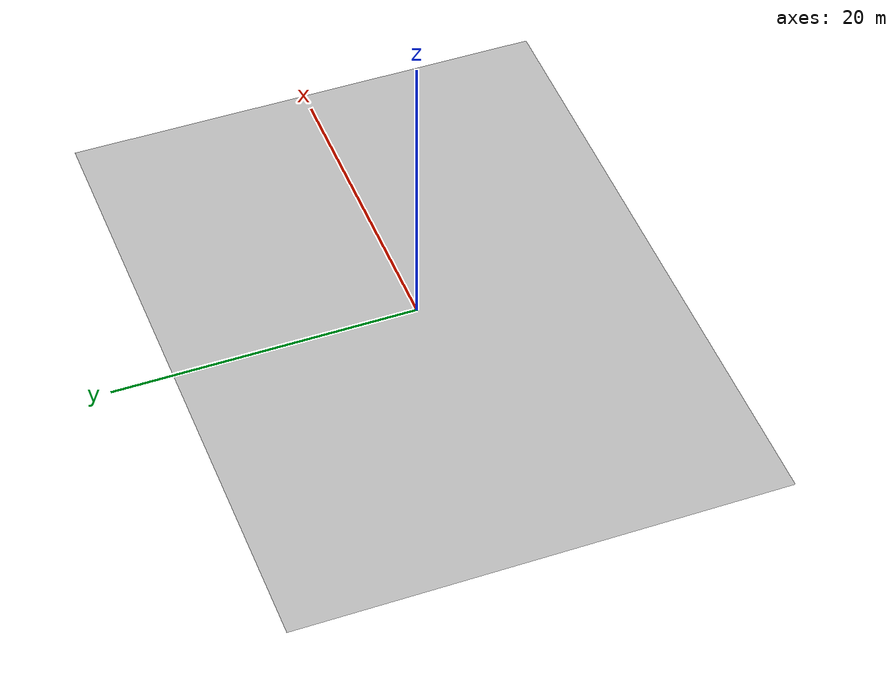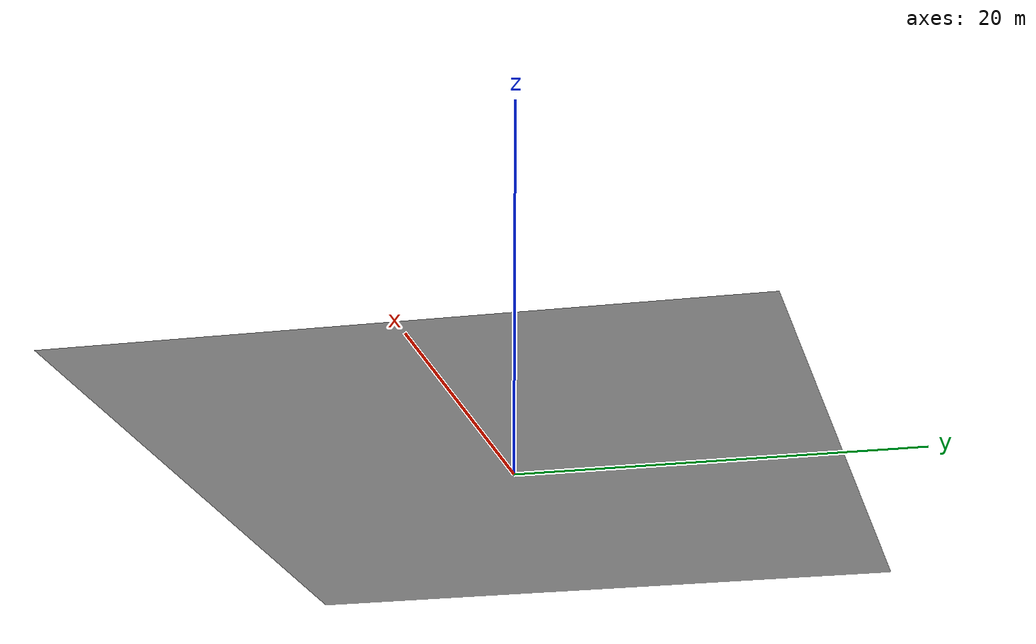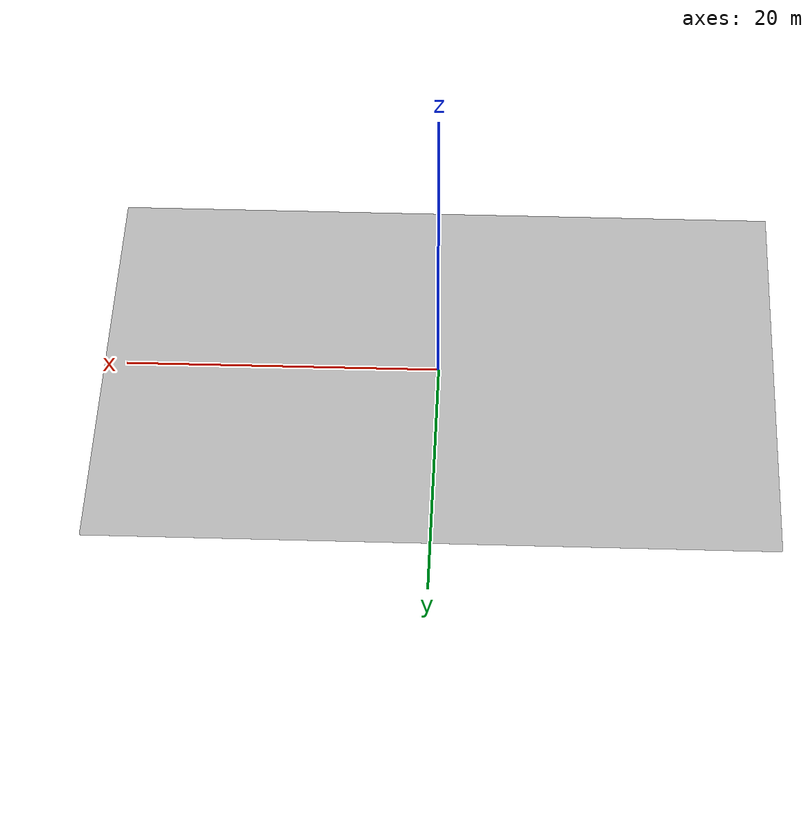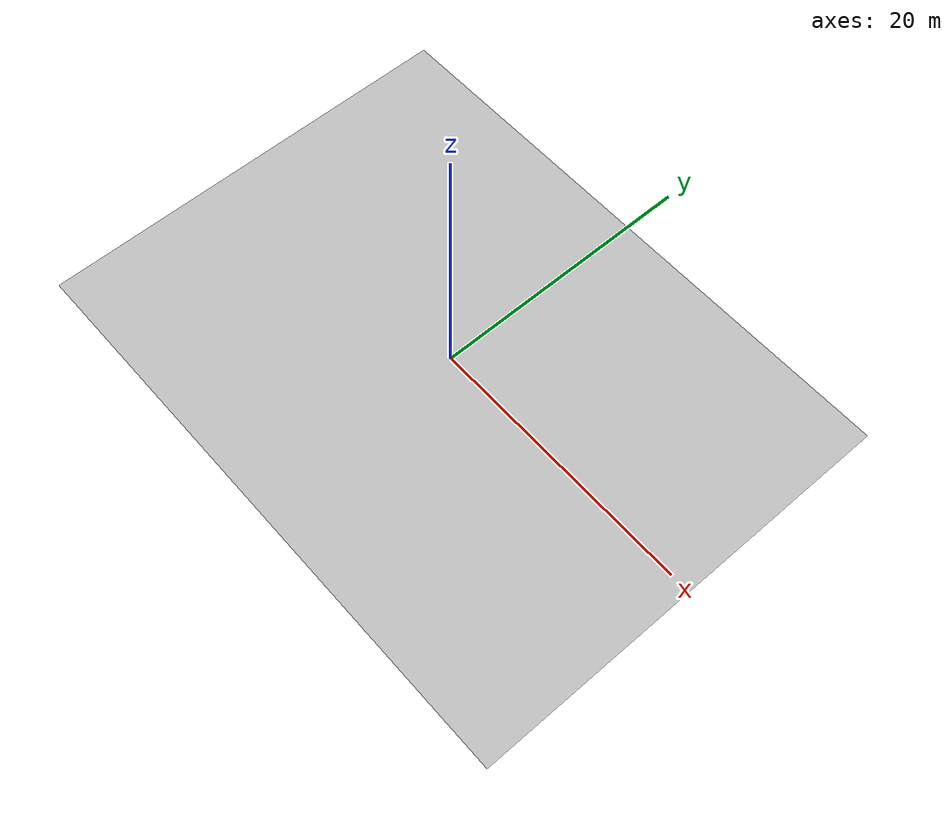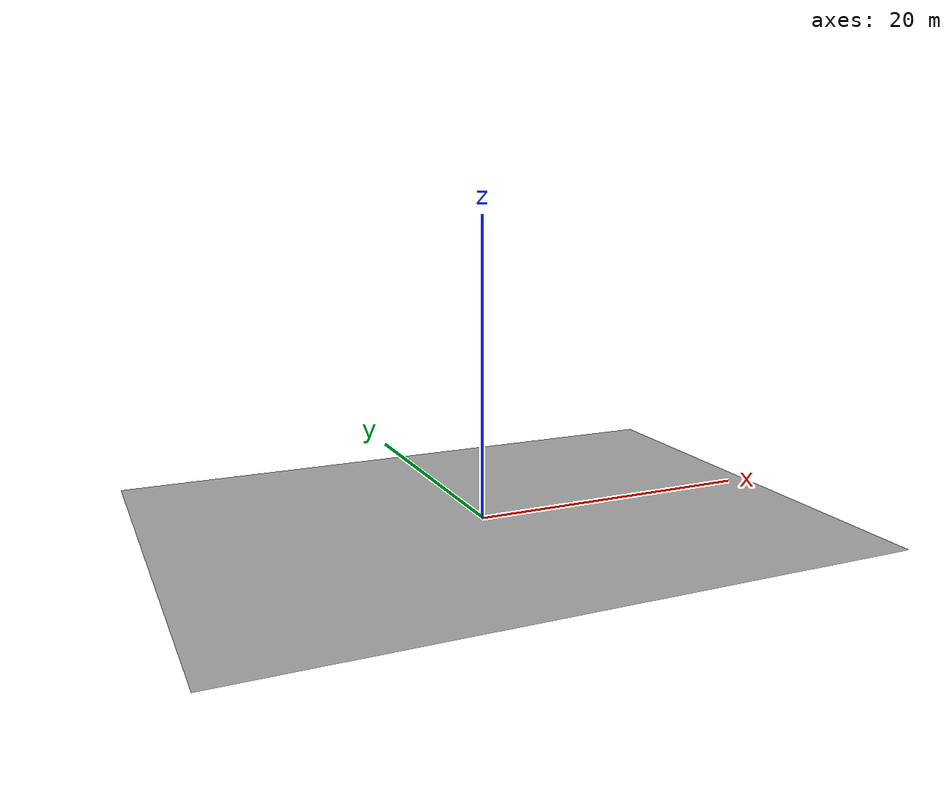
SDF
<?xml version='1.0'?>
<sdf version="1.6">
<model name="my_calibration_plane">
  <static>true</static>
    <link name="link">
      <visual name="visual">
        <geometry>
          <mesh>
            <uri>model://my_calibration_plane/meshes/my_calibration_plane.dae</uri>
          </mesh>
        </geometry>
      </visual>
    </link>
  </model>
</sdf>
